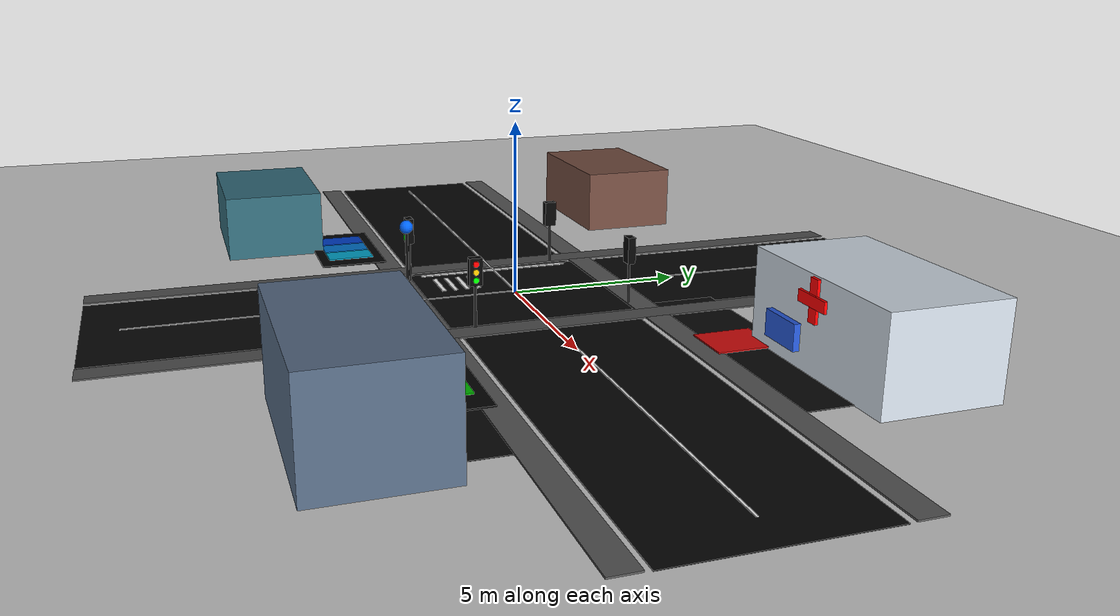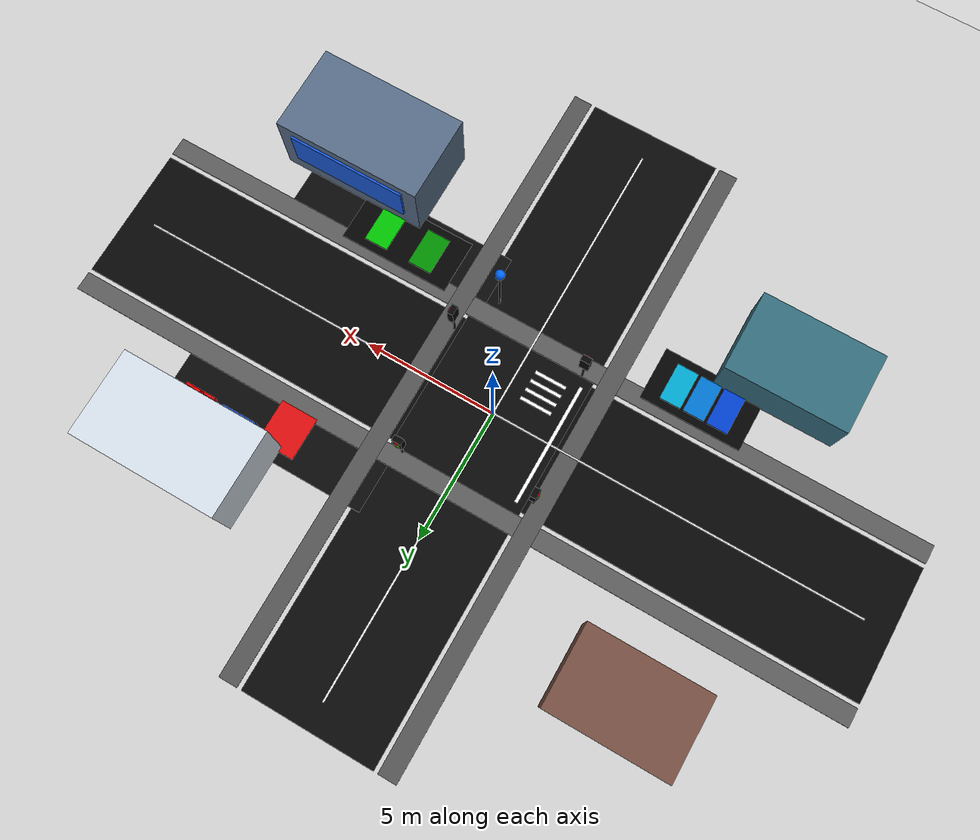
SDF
<?xml version="1.0" ?>
<sdf version="1.6">
  <world name="v2x_city_world">

    <include>
      <uri>model://sun</uri>
    </include>

    <include>
      <uri>model://ground_plane</uri>
    </include>

    <gui fullscreen="0">
      <camera name="user_camera">
        <pose>0 -15 10 0 0.75 1.5707</pose>
      </camera>
    </gui>

    <!-- ================= ROADS ================= -->

    <model name="main_horizontal_road">
      <static>true</static>
      <pose>0 0 0.01 0 0 0</pose>
      <link name="link">
        <visual name="road">
          <geometry><box><size>30 5.0 0.02</size></box></geometry>
          <material>
            <ambient>0.025 0.025 0.025 1</ambient>
            <diffuse>0.025 0.025 0.025 1</diffuse>
          </material>
        </visual>
      </link>
    </model>

    <model name="main_vertical_road">
      <static>true</static>
      <pose>0 0 0.012 0 0 0</pose>
      <link name="link">
        <visual name="road">
          <geometry><box><size>5.0 24 0.02</size></box></geometry>
          <material>
            <ambient>0.03 0.03 0.03 1</ambient>
            <diffuse>0.03 0.03 0.03 1</diffuse>
          </material>
        </visual>
      </link>
    </model>

    <!-- Road to office parking -->
    <model name="office_access_road">
      <static>true</static>
      <pose>6.2 -4.0 0.014 0 0 0</pose>
      <link name="link">
        <visual name="road">
          <geometry><box><size>8.0 2.4 0.02</size></box></geometry>
          <material>
            <ambient>0.035 0.035 0.035 1</ambient>
            <diffuse>0.035 0.035 0.035 1</diffuse>
          </material>
        </visual>
      </link>
    </model>

    <!-- Road to hospital ambulance bay -->
    <model name="hospital_access_road">
      <static>true</static>
      <pose>6.2 4.0 0.014 0 0 0</pose>
      <link name="link">
        <visual name="road">
          <geometry><box><size>8.0 2.4 0.02</size></box></geometry>
          <material>
            <ambient>0.035 0.035 0.035 1</ambient>
            <diffuse>0.035 0.035 0.035 1</diffuse>
          </material>
        </visual>
      </link>
    </model>

    <!-- ================= SIDEWALKS ================= -->

    <model name="sidewalk_north">
      <static>true</static>
      <pose>0 3.0 0.035 0 0 0</pose>
      <link name="link">
        <visual name="sidewalk">
          <geometry><box><size>30 0.7 0.04</size></box></geometry>
          <material>
            <ambient>0.35 0.35 0.35 1</ambient>
            <diffuse>0.35 0.35 0.35 1</diffuse>
          </material>
        </visual>
      </link>
    </model>

    <model name="sidewalk_south">
      <static>true</static>
      <pose>0 -3.0 0.035 0 0 0</pose>
      <link name="link">
        <visual name="sidewalk">
          <geometry><box><size>30 0.7 0.04</size></box></geometry>
          <material>
            <ambient>0.35 0.35 0.35 1</ambient>
            <diffuse>0.35 0.35 0.35 1</diffuse>
          </material>
        </visual>
      </link>
    </model>

    <model name="sidewalk_east">
      <static>true</static>
      <pose>3.0 0 0.036 0 0 0</pose>
      <link name="link">
        <visual name="sidewalk">
          <geometry><box><size>0.7 24 0.04</size></box></geometry>
          <material>
            <ambient>0.32 0.32 0.32 1</ambient>
            <diffuse>0.32 0.32 0.32 1</diffuse>
          </material>
        </visual>
      </link>
    </model>

    <model name="sidewalk_west">
      <static>true</static>
      <pose>-3.0 0 0.036 0 0 0</pose>
      <link name="link">
        <visual name="sidewalk">
          <geometry><box><size>0.7 24 0.04</size></box></geometry>
          <material>
            <ambient>0.32 0.32 0.32 1</ambient>
            <diffuse>0.32 0.32 0.32 1</diffuse>
          </material>
        </visual>
      </link>
    </model>

    <!-- ================= MARKINGS ================= -->

    <model name="horizontal_lane_marking">
      <static>true</static>
      <pose>0 0 0.055 0 0 0</pose>
      <link name="link">
        <visual name="visual">
          <geometry><box><size>28 0.06 0.02</size></box></geometry>
          <material><ambient>1 1 1 1</ambient><diffuse>1 1 1 1</diffuse></material>
        </visual>
      </link>
    </model>

    <model name="vertical_lane_marking">
      <static>true</static>
      <pose>0 0 0.056 0 0 0</pose>
      <link name="link">
        <visual name="visual">
          <geometry><box><size>0.06 22 0.02</size></box></geometry>
          <material><ambient>1 1 1 1</ambient><diffuse>1 1 1 1</diffuse></material>
        </visual>
      </link>
    </model>

    <!-- This is the stop line used by robot_agent.py -->
    <model name="main_stop_line">
      <static>true</static>
      <pose>-2.2 0 0.07 0 0 0</pose>
      <link name="link">
        <visual name="visual">
          <geometry><box><size>0.12 4.6 0.025</size></box></geometry>
          <material><ambient>1 1 1 1</ambient><diffuse>1 1 1 1</diffuse></material>
        </visual>
      </link>
    </model>

    <model name="crosswalk_south">
      <static>true</static>
      <pose>-1.15 -2.0 0.075 0 0 0</pose>
      <link name="link">
        <visual name="stripe1"><pose>0 0 0 0 0 0</pose><geometry><box><size>1.2 0.12 0.025</size></box></geometry><material><ambient>1 1 1 1</ambient><diffuse>1 1 1 1</diffuse></material></visual>
        <visual name="stripe2"><pose>0 0.35 0 0 0 0</pose><geometry><box><size>1.2 0.12 0.025</size></box></geometry><material><ambient>1 1 1 1</ambient><diffuse>1 1 1 1</diffuse></material></visual>
        <visual name="stripe3"><pose>0 0.70 0 0 0 0</pose><geometry><box><size>1.2 0.12 0.025</size></box></geometry><material><ambient>1 1 1 1</ambient><diffuse>1 1 1 1</diffuse></material></visual>
        <visual name="stripe4"><pose>0 1.05 0 0 0 0</pose><geometry><box><size>1.2 0.12 0.025</size></box></geometry><material><ambient>1 1 1 1</ambient><diffuse>1 1 1 1</diffuse></material></visual>
      </link>
    </model>

    <!-- ================= BUILDINGS ================= -->

    <model name="hospital_complex">
      <static>true</static>
      <pose>8.4 6.2 1.25 0 0 0</pose>
      <link name="link">
        <visual name="main">
          <geometry><box><size>5.5 3.2 2.5</size></box></geometry>
          <material>
            <ambient>0.82 0.86 0.90 1</ambient>
            <diffuse>0.82 0.86 0.90 1</diffuse>
          </material>
        </visual>
        <visual name="entrance">
          <pose>-1.2 -1.65 -0.45 0 0 0</pose>
          <geometry><box><size>1.3 0.25 0.7</size></box></geometry>
          <material>
            <ambient>0.15 0.35 0.85 1</ambient>
            <diffuse>0.15 0.35 0.85 1</diffuse>
          </material>
        </visual>
        <visual name="cross_vertical">
          <pose>0 -1.65 0.65 0 0 0</pose>
          <geometry><box><size>0.30 0.08 1.1</size></box></geometry>
          <material><ambient>1 0 0 1</ambient><diffuse>1 0 0 1</diffuse></material>
        </visual>
        <visual name="cross_horizontal">
          <pose>0 -1.70 0.65 0 0 0</pose>
          <geometry><box><size>1.1 0.08 0.30</size></box></geometry>
          <material><ambient>1 0 0 1</ambient><diffuse>1 0 0 1</diffuse></material>
        </visual>
      </link>
    </model>

    <model name="office_tower">
      <static>true</static>
      <pose>8.4 -6.2 1.35 0 0 0</pose>
      <link name="link">
        <visual name="main">
          <geometry><box><size>5.5 3.2 2.7</size></box></geometry>
          <material>
            <ambient>0.34 0.42 0.52 1</ambient>
            <diffuse>0.34 0.42 0.52 1</diffuse>
          </material>
        </visual>
        <visual name="glass_front">
          <pose>0 1.65 0.25 0 0 0</pose>
          <geometry><box><size>4.4 0.08 1.5</size></box></geometry>
          <material>
            <ambient>0.1 0.35 0.85 1</ambient>
            <diffuse>0.1 0.35 0.85 1</diffuse>
          </material>
        </visual>
      </link>
    </model>

    <model name="residential_block">
      <static>true</static>
      <pose>-8.3 6.2 1.0 0 0 0</pose>
      <link name="link">
        <visual name="main">
          <geometry><box><size>4.5 3.0 2.0</size></box></geometry>
          <material>
            <ambient>0.45 0.30 0.25 1</ambient>
            <diffuse>0.45 0.30 0.25 1</diffuse>
          </material>
        </visual>
      </link>
    </model>

    <model name="commercial_block">
      <static>true</static>
      <pose>-8.3 -6.2 1.0 0 0 0</pose>
      <link name="link">
        <visual name="main">
          <geometry><box><size>4.5 3.0 2.0</size></box></geometry>
          <material>
            <ambient>0.20 0.42 0.48 1</ambient>
            <diffuse>0.20 0.42 0.48 1</diffuse>
          </material>
        </visual>
      </link>
    </model>

    <!-- ================= PARKING ================= -->

    <model name="office_parking_zone_O1_O2">
      <static>true</static>
      <pose>5.8 -4.0 0.07 0 0 0</pose>
      <link name="link">
        <visual name="base">
          <geometry><box><size>4.2 2.0 0.04</size></box></geometry>
          <material><ambient>0.01 0.01 0.01 1</ambient><diffuse>0.01 0.01 0.01 1</diffuse></material>
        </visual>
        <visual name="slot_o1">
          <pose>-0.9 0 0.04 0 0 0</pose>
          <geometry><box><size>0.9 1.4 0.04</size></box></geometry>
          <material><ambient>0 0.55 0 1</ambient><diffuse>0 0.55 0 1</diffuse></material>
        </visual>
        <visual name="slot_o2">
          <pose>0.9 0 0.04 0 0 0</pose>
          <geometry><box><size>0.9 1.4 0.04</size></box></geometry>
          <material><ambient>0 0.75 0 1</ambient><diffuse>0 0.75 0 1</diffuse></material>
        </visual>
      </link>
    </model>

    <model name="hospital_bay_H1">
      <static>true</static>
      <pose>5.8 4.0 0.07 0 0 0</pose>
      <link name="link">
        <visual name="base">
          <geometry><box><size>1.4 1.6 0.04</size></box></geometry>
          <material><ambient>0.85 0.05 0.05 1</ambient><diffuse>0.85 0.05 0.05 1</diffuse></material>
        </visual>
      </link>
    </model>

    <model name="commercial_parking_lot">
      <static>true</static>
      <pose>-6.0 -4.0 0.07 0 0 0</pose>
      <link name="link">
        <visual name="base">
          <geometry><box><size>3.8 2.0 0.04</size></box></geometry>
          <material><ambient>0.01 0.01 0.01 1</ambient><diffuse>0.01 0.01 0.01 1</diffuse></material>
        </visual>
        <visual name="slot1">
          <pose>-0.9 0 0.04 0 0 0</pose>
          <geometry><box><size>0.8 1.4 0.04</size></box></geometry>
          <material><ambient>0 0.25 0.8 1</ambient><diffuse>0 0.25 0.8 1</diffuse></material>
        </visual>
        <visual name="slot2">
          <pose>0.0 0 0.04 0 0 0</pose>
          <geometry><box><size>0.8 1.4 0.04</size></box></geometry>
          <material><ambient>0 0.45 0.8 1</ambient><diffuse>0 0.45 0.8 1</diffuse></material>
        </visual>
        <visual name="slot3">
          <pose>0.9 0 0.04 0 0 0</pose>
          <geometry><box><size>0.8 1.4 0.04</size></box></geometry>
          <material><ambient>0 0.65 0.8 1</ambient><diffuse>0 0.65 0.8 1</diffuse></material>
        </visual>
      </link>
    </model>

    <!-- ================= TRAFFIC LIGHTS ================= -->

    <model name="traffic_light_south">
      <static>true</static>
      <pose>-2.0 -2.7 0 0 0 0</pose>
      <link name="link">
        <visual name="pole"><pose>0 0 0.8 0 0 0</pose><geometry><cylinder><radius>0.04</radius><length>1.6</length></cylinder></geometry><material><ambient>0.1 0.1 0.1 1</ambient><diffuse>0.1 0.1 0.1 1</diffuse></material></visual>
        <visual name="box"><pose>0 0 1.6 0 0 0</pose><geometry><box><size>0.35 0.22 0.75</size></box></geometry><material><ambient>0.02 0.02 0.02 1</ambient><diffuse>0.02 0.02 0.02 1</diffuse></material></visual>
        <visual name="red"><pose>0 -0.13 1.82 1.5707 0 0</pose><geometry><cylinder><radius>0.08</radius><length>0.03</length></cylinder></geometry><material><ambient>1 0 0 1</ambient><diffuse>1 0 0 1</diffuse></material></visual>
        <visual name="yellow"><pose>0 -0.13 1.60 1.5707 0 0</pose><geometry><cylinder><radius>0.08</radius><length>0.03</length></cylinder></geometry><material><ambient>1 0.8 0 1</ambient><diffuse>1 0.8 0 1</diffuse></material></visual>
        <visual name="green"><pose>0 -0.13 1.38 1.5707 0 0</pose><geometry><cylinder><radius>0.08</radius><length>0.03</length></cylinder></geometry><material><ambient>0 1 0 1</ambient><diffuse>0 1 0 1</diffuse></material></visual>
      </link>
    </model>

    <model name="traffic_light_north">
      <static>true</static>
      <pose>2.0 2.7 0 0 0 3.1415</pose>
      <link name="link">
        <visual name="pole"><pose>0 0 0.8 0 0 0</pose><geometry><cylinder><radius>0.04</radius><length>1.6</length></cylinder></geometry><material><ambient>0.1 0.1 0.1 1</ambient><diffuse>0.1 0.1 0.1 1</diffuse></material></visual>
        <visual name="box"><pose>0 0 1.6 0 0 0</pose><geometry><box><size>0.35 0.22 0.75</size></box></geometry><material><ambient>0.02 0.02 0.02 1</ambient><diffuse>0.02 0.02 0.02 1</diffuse></material></visual>
        <visual name="red"><pose>0 -0.13 1.82 1.5707 0 0</pose><geometry><cylinder><radius>0.08</radius><length>0.03</length></cylinder></geometry><material><ambient>1 0 0 1</ambient><diffuse>1 0 0 1</diffuse></material></visual>
        <visual name="yellow"><pose>0 -0.13 1.60 1.5707 0 0</pose><geometry><cylinder><radius>0.08</radius><length>0.03</length></cylinder></geometry><material><ambient>1 0.8 0 1</ambient><diffuse>1 0.8 0 1</diffuse></material></visual>
        <visual name="green"><pose>0 -0.13 1.38 1.5707 0 0</pose><geometry><cylinder><radius>0.08</radius><length>0.03</length></cylinder></geometry><material><ambient>0 1 0 1</ambient><diffuse>0 1 0 1</diffuse></material></visual>
      </link>
    </model>

    <model name="traffic_light_east">
      <static>true</static>
      <pose>2.7 -2.0 0 0 0 1.5707</pose>
      <link name="link">
        <visual name="pole"><pose>0 0 0.8 0 0 0</pose><geometry><cylinder><radius>0.04</radius><length>1.6</length></cylinder></geometry><material><ambient>0.1 0.1 0.1 1</ambient><diffuse>0.1 0.1 0.1 1</diffuse></material></visual>
        <visual name="box"><pose>0 0 1.6 0 0 0</pose><geometry><box><size>0.35 0.22 0.75</size></box></geometry><material><ambient>0.02 0.02 0.02 1</ambient><diffuse>0.02 0.02 0.02 1</diffuse></material></visual>
        <visual name="red"><pose>0 -0.13 1.82 1.5707 0 0</pose><geometry><cylinder><radius>0.08</radius><length>0.03</length></cylinder></geometry><material><ambient>1 0 0 1</ambient><diffuse>1 0 0 1</diffuse></material></visual>
        <visual name="yellow"><pose>0 -0.13 1.60 1.5707 0 0</pose><geometry><cylinder><radius>0.08</radius><length>0.03</length></cylinder></geometry><material><ambient>1 0.8 0 1</ambient><diffuse>1 0.8 0 1</diffuse></material></visual>
        <visual name="green"><pose>0 -0.13 1.38 1.5707 0 0</pose><geometry><cylinder><radius>0.08</radius><length>0.03</length></cylinder></geometry><material><ambient>0 1 0 1</ambient><diffuse>0 1 0 1</diffuse></material></visual>
      </link>
    </model>

    <model name="traffic_light_west">
      <static>true</static>
      <pose>-2.7 2.0 0 0 0 -1.5707</pose>
      <link name="link">
        <visual name="pole"><pose>0 0 0.8 0 0 0</pose><geometry><cylinder><radius>0.04</radius><length>1.6</length></cylinder></geometry><material><ambient>0.1 0.1 0.1 1</ambient><diffuse>0.1 0.1 0.1 1</diffuse></material></visual>
        <visual name="box"><pose>0 0 1.6 0 0 0</pose><geometry><box><size>0.35 0.22 0.75</size></box></geometry><material><ambient>0.02 0.02 0.02 1</ambient><diffuse>0.02 0.02 0.02 1</diffuse></material></visual>
        <visual name="red"><pose>0 -0.13 1.82 1.5707 0 0</pose><geometry><cylinder><radius>0.08</radius><length>0.03</length></cylinder></geometry><material><ambient>1 0 0 1</ambient><diffuse>1 0 0 1</diffuse></material></visual>
        <visual name="yellow"><pose>0 -0.13 1.60 1.5707 0 0</pose><geometry><cylinder><radius>0.08</radius><length>0.03</length></cylinder></geometry><material><ambient>1 0.8 0 1</ambient><diffuse>1 0.8 0 1</diffuse></material></visual>
        <visual name="green"><pose>0 -0.13 1.38 1.5707 0 0</pose><geometry><cylinder><radius>0.08</radius><length>0.03</length></cylinder></geometry><material><ambient>0 1 0 1</ambient><diffuse>0 1 0 1</diffuse></material></visual>
      </link>
    </model>

    <model name="v2x_rsu_tower">
      <static>true</static>
      <pose>1.8 -3.6 0 0 0 0</pose>
      <link name="link">
        <visual name="pole">
          <pose>0 0 1.3 0 0 0</pose>
          <geometry><cylinder><radius>0.04</radius><length>2.6</length></cylinder></geometry>
          <material><ambient>0.05 0.05 0.05 1</ambient><diffuse>0.05 0.05 0.05 1</diffuse></material>
        </visual>
        <visual name="antenna">
          <pose>0 0 2.7 0 0 0</pose>
          <geometry><sphere><radius>0.18</radius></sphere></geometry>
          <material><ambient>0 0.4 1 1</ambient><diffuse>0 0.4 1 1</diffuse></material>
        </visual>
      </link>
    </model>

  </world>
</sdf>
